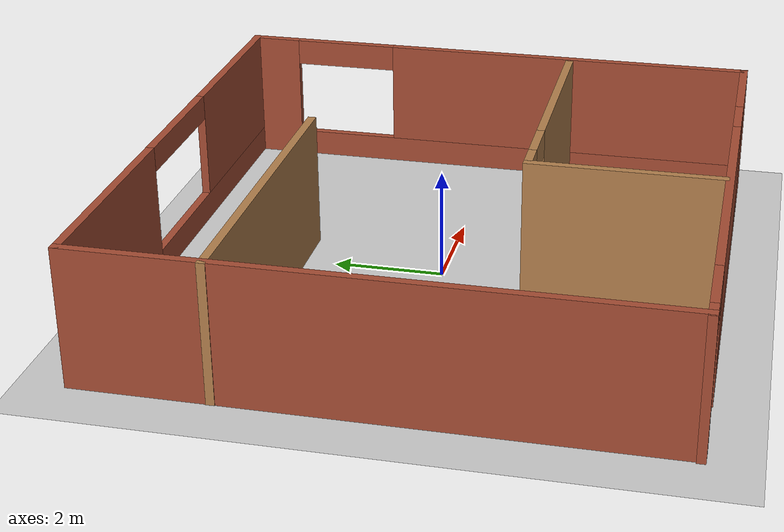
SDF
<sdf version="1.7">
 <world name="default">
  <light name="sun" type="directional">
   <pose>0 0 10 0 -0 0</pose>
   <diffuse>0.8 0.8 0.8 1</diffuse>
   <specular>0.2 0.2 0.2 1</specular>
   <attenuation>
    <range>1000</range>
    <constant>0.9</constant>
    <linear>0.01</linear>
    <quadratic>0.001</quadratic>
   </attenuation>
   <direction>-0.5 0.1 -0.9</direction>
   <spot><inner_angle>0</inner_angle><outer_angle>0</outer_angle><falloff>0</falloff></spot>
  </light>
  <model name="ground_plane">
   <static>1</static>
   <link name="link">
    <collision name="collision">
     <geometry><plane><normal>0 0 1</normal><size>100 100</size></plane></geometry>
     <surface><friction><ode><mu>100</mu><mu2>50</mu2></ode></friction></surface>
    </collision>
    <visual name="visual">
     <cast_shadows>0</cast_shadows>
     <geometry><plane><normal>0 0 1</normal><size>100 100</size></plane></geometry>
     <material>
      <script><uri>file://media/materials/scripts/gazebo.material</uri><name>Gazebo/Grey</name></script>
     </material>
    </visual>
   </link>
  </model>
  <gravity>0 0 -9.8</gravity>
  <magnetic_field>6e-06 2.3e-05 -4.2e-05</magnetic_field>
  <atmosphere type="adiabatic"/>
  <physics type="ode">
   <max_step_size>0.001</max_step_size>
   <real_time_factor>1</real_time_factor>
   <real_time_update_rate>1000</real_time_update_rate>
  </physics>
  <scene><ambient>0.4 0.4 0.4 1</ambient><background>0.7 0.7 0.7 1</background><shadows>1</shadows></scene>
  <audio><device>default</device></audio>
  <spherical_coordinates>
   <surface_model>EARTH_WGS84</surface_model>
   <latitude_deg>0</latitude_deg>
   <longitude_deg>0</longitude_deg>
   <elevation>0</elevation>
   <heading_deg>0</heading_deg>
  </spherical_coordinates>
  <model name="test_world">
   <pose>-0.015208 -0 0 0 -0 0</pose>
   <link name="Wall_0">
    <collision name="Wall_0_Collision">
     <geometry><box><size>10.15 0.15 2.5</size></box></geometry>
     <pose>0 0 1.25 0 -0 0</pose>
    </collision>
    <visual name="Wall_0_Visual">
     <pose>0 0 1.25 0 -0 0</pose>
     <geometry><box><size>10.15 0.15 2.5</size></box></geometry>
     <material>
      <script><uri>file://media/materials/scripts/gazebo.material</uri><name>Gazebo/Bricks</name></script>
      <ambient>1 1 1 1</ambient>
     </material>
     <meta><layer>0</layer></meta>
    </visual>
    <pose>-4.98479 0 0 0 -0 1.5708</pose>
   </link>
   <link name="Wall_1">
    <pose>0.015208 5 0 0 -0 0</pose>
    <visual name="Wall_1_Visual_0">
     <pose>-3.06741 0 1.25 0 -0 0</pose>
     <geometry><box><size>4.01517 0.15 2.5</size></box></geometry>
     <material>
      <script><uri>file://media/materials/scripts/gazebo.material</uri><name>Gazebo/Bricks</name></script>
      <ambient>1 1 1 1</ambient>
     </material>
     <meta><layer>0</layer></meta>
    </visual>
    <collision name="Wall_1_Collision_0">
     <geometry><box><size>4.01517 0.15 2.5</size></box></geometry>
     <pose>-3.06741 0 1.25 0 -0 0</pose>
    </collision>
    <visual name="Wall_1_Visual_1">
     <pose>2.00759 0 0.25 0 -0 0</pose>
     <geometry><box><size>6.13483 0.15 0.5</size></box></geometry>
     <material>
      <script><uri>file://media/materials/scripts/gazebo.material</uri><name>Gazebo/Bricks</name></script>
      <ambient>1 1 1 1</ambient>
     </material>
     <meta><layer>0</layer></meta>
    </visual>
    <collision name="Wall_1_Collision_1">
     <geometry><box><size>6.13483 0.15 0.5</size></box></geometry>
     <pose>2.00759 0 0.25 0 -0 0</pose>
    </collision>
    <visual name="Wall_1_Visual_2">
     <pose>3.27759 0 1.5 0 -0 0</pose>
     <geometry><box><size>3.59483 0.15 2</size></box></geometry>
     <material>
      <script><uri>file://media/materials/scripts/gazebo.material</uri><name>Gazebo/Bricks</name></script>
      <ambient>1 1 1 1</ambient>
     </material>
     <meta><layer>0</layer></meta>
    </visual>
    <collision name="Wall_1_Collision_2">
     <geometry><box><size>3.59483 0.15 2</size></box></geometry>
     <pose>3.27759 0 1.5 0 -0 0</pose>
    </collision>
    <visual name="Wall_1_Visual_3">
     <pose>0.210174 0 2.27 0 -0 0</pose>
     <geometry><box><size>2.54 0.15 0.46</size></box></geometry>
     <material>
      <script><uri>file://media/materials/scripts/gazebo.material</uri><name>Gazebo/Bricks</name></script>
      <ambient>1 1 1 1</ambient>
     </material>
     <meta><layer>0</layer></meta>
    </visual>
    <collision name="Wall_1_Collision_3">
     <geometry><box><size>2.54 0.15 0.46</size></box></geometry>
     <pose>0.210174 0 2.27 0 -0 0</pose>
    </collision>
   </link>
   <link name="Wall_2">
    <pose>5.01521 0 0 0 -0 -1.5708</pose>
    <visual name="Wall_2_Visual_0">
     <pose>-4.58164 0 1.25 0 -0 0</pose>
     <geometry><box><size>0.986721 0.15 2.5</size></box></geometry>
     <material>
      <script><uri>file://media/materials/scripts/gazebo.material</uri><name>Gazebo/Bricks</name></script>
      <ambient>1 1 1 1</ambient>
     </material>
     <meta><layer>0</layer></meta>
    </visual>
    <collision name="Wall_2_Collision_0">
     <geometry><box><size>0.986721 0.15 2.5</size></box></geometry>
     <pose>-4.58164 0 1.25 0 -0 0</pose>
    </collision>
    <visual name="Wall_2_Visual_1">
     <pose>0.493361 0 0.25 0 -0 0</pose>
     <geometry><box><size>9.16328 0.15 0.5</size></box></geometry>
     <material>
      <script><uri>file://media/materials/scripts/gazebo.material</uri><name>Gazebo/Bricks</name></script>
      <ambient>1 1 1 1</ambient>
     </material>
     <meta><layer>0</layer></meta>
    </visual>
    <collision name="Wall_2_Collision_1">
     <geometry><box><size>9.16328 0.15 0.5</size></box></geometry>
     <pose>0.493361 0 0.25 0 -0 0</pose>
    </collision>
    <visual name="Wall_2_Visual_2">
     <pose>1.49336 0 1.5 0 -0 0</pose>
     <geometry><box><size>7.16328 0.15 2</size></box></geometry>
     <material>
      <script><uri>file://media/materials/scripts/gazebo.material</uri><name>Gazebo/Bricks</name></script>
      <ambient>1 1 1 1</ambient>
     </material>
     <meta><layer>0</layer></meta>
    </visual>
    <collision name="Wall_2_Collision_2">
     <geometry><box><size>7.16328 0.15 2</size></box></geometry>
     <pose>1.49336 0 1.5 0 -0 0</pose>
    </collision>
    <visual name="Wall_2_Visual_3">
     <pose>-3.08828 0 2.25 0 -0 0</pose>
     <geometry><box><size>2 0.15 0.5</size></box></geometry>
     <material>
      <script><uri>file://media/materials/scripts/gazebo.material</uri><name>Gazebo/Bricks</name></script>
      <ambient>1 1 1 1</ambient>
     </material>
     <meta><layer>0</layer></meta>
    </visual>
    <collision name="Wall_2_Collision_3">
     <geometry><box><size>2 0.15 0.5</size></box></geometry>
     <pose>-3.08828 0 2.25 0 -0 0</pose>
    </collision>
   </link>
   <link name="Wall_3">
    <pose>-0.015209 -5 0 0 -0 3.14159</pose>
    <visual name="Wall_3_Visual_0">
     <pose>-4.08866 0 1.25 0 -0 0</pose>
     <geometry><box><size>1.97267 0.15 2.5</size></box></geometry>
     <material>
      <script><uri>file://media/materials/scripts/gazebo.material</uri><name>Gazebo/Bricks</name></script>
      <ambient>1 1 1 1</ambient>
     </material>
     <meta><layer>0</layer></meta>
    </visual>
    <collision name="Wall_3_Collision_0">
     <geometry><box><size>1.97267 0.15 2.5</size></box></geometry>
     <pose>-4.08866 0 1.25 0 -0 0</pose>
    </collision>
    <visual name="Wall_3_Visual_1">
     <pose>4.87832 0 1.25 0 -0 0</pose>
     <geometry><box><size>0.393365 0.15 2.5</size></box></geometry>
     <material>
      <script><uri>file://media/materials/scripts/gazebo.material</uri><name>Gazebo/Bricks</name></script>
      <ambient>1 1 1 1</ambient>
     </material>
     <meta><layer>0</layer></meta>
    </visual>
    <collision name="Wall_3_Collision_1">
     <geometry><box><size>0.393365 0.15 2.5</size></box></geometry>
     <pose>4.87832 0 1.25 0 -0 0</pose>
    </collision>
    <visual name="Wall_3_Visual_2">
     <pose>0.189653 0 0.3 0 -0 0</pose>
     <geometry><box><size>6.58397 0.15 0.6</size></box></geometry>
     <material>
      <script><uri>file://media/materials/scripts/gazebo.material</uri><name>Gazebo/Bricks</name></script>
      <ambient>1 1 1 1</ambient>
     </material>
     <meta><layer>0</layer></meta>
    </visual>
    <collision name="Wall_3_Collision_2">
     <geometry><box><size>6.58397 0.15 0.6</size></box></geometry>
     <pose>0.189653 0 0.3 0 -0 0</pose>
    </collision>
    <visual name="Wall_3_Visual_3">
     <pose>0.689653 0 1.55 0 -0 0</pose>
     <geometry><box><size>5.58397 0.15 1.9</size></box></geometry>
     <material>
      <script><uri>file://media/materials/scripts/gazebo.material</uri><name>Gazebo/Bricks</name></script>
      <ambient>1 1 1 1</ambient>
     </material>
     <meta><layer>0</layer></meta>
    </visual>
    <collision name="Wall_3_Collision_3">
     <geometry><box><size>5.58397 0.15 1.9</size></box></geometry>
     <pose>0.689653 0 1.55 0 -0 0</pose>
    </collision>
    <visual name="Wall_3_Visual_4">
     <pose>4.08164 0 2.25 0 -0 0</pose>
     <geometry><box><size>1.2 0.15 0.5</size></box></geometry>
     <material>
      <script><uri>file://media/materials/scripts/gazebo.material</uri><name>Gazebo/Bricks</name></script>
      <ambient>1 1 1 1</ambient>
     </material>
     <meta><layer>0</layer></meta>
    </visual>
    <collision name="Wall_3_Collision_4">
     <geometry><box><size>1.2 0.15 0.5</size></box></geometry>
     <pose>4.08164 0 2.25 0 -0 0</pose>
    </collision>
    <visual name="Wall_3_Visual_5">
     <pose>-2.60233 0 2.3 0 -0 0</pose>
     <geometry><box><size>1 0.15 0.4</size></box></geometry>
     <material>
      <script><uri>file://media/materials/scripts/gazebo.material</uri><name>Gazebo/Bricks</name></script>
      <ambient>1 1 1 1</ambient>
     </material>
     <meta><layer>0</layer></meta>
    </visual>
    <collision name="Wall_3_Collision_5">
     <geometry><box><size>1 0.15 0.4</size></box></geometry>
     <pose>-2.60233 0 2.3 0 -0 0</pose>
    </collision>
   </link>
   <link name="Wall_5">
    <collision name="Wall_5_Collision">
     <geometry><box><size>3.5 0.15 2.5</size></box></geometry>
     <pose>0 0 1.25 0 -0 0</pose>
    </collision>
    <visual name="Wall_5_Visual">
     <pose>0 0 1.25 0 -0 0</pose>
     <geometry><box><size>3.5 0.15 2.5</size></box></geometry>
     <material>
      <script><uri>file://media/materials/scripts/gazebo.material</uri><name>Gazebo/Wood</name></script>
      <ambient>1 1 1 1</ambient>
     </material>
     <meta><layer>0</layer></meta>
    </visual>
    <pose>-0.27787 -3.2388 0 0 -0 1.5708</pose>
   </link>
   <link name="Wall_6">
    <pose>2.27213 -1.5638 0 0 -0 0</pose>
    <visual name="Wall_6_Visual_0">
     <pose>-2.31462 0 1.25 0 -0 0</pose>
     <geometry><box><size>0.620754 0.15 2.5</size></box></geometry>
     <material>
      <script><uri>file://media/materials/scripts/gazebo.material</uri><name>Gazebo/Wood</name></script>
      <ambient>1 1 1 1</ambient>
     </material>
     <meta><layer>0</layer></meta>
    </visual>
    <collision name="Wall_6_Collision_0">
     <geometry><box><size>0.620754 0.15 2.5</size></box></geometry>
     <pose>-2.31462 0 1.25 0 -0 0</pose>
    </collision>
    <visual name="Wall_6_Visual_1">
     <pose>0.760377 0 1.25 0 -0 0</pose>
     <geometry><box><size>3.72925 0.15 2.5</size></box></geometry>
     <material>
      <script><uri>file://media/materials/scripts/gazebo.material</uri><name>Gazebo/Wood</name></script>
      <ambient>1 1 1 1</ambient>
     </material>
     <meta><layer>0</layer></meta>
    </visual>
    <collision name="Wall_6_Collision_1">
     <geometry><box><size>3.72925 0.15 2.5</size></box></geometry>
     <pose>0.760377 0 1.25 0 -0 0</pose>
    </collision>
    <visual name="Wall_6_Visual_2">
     <pose>-1.55425 0 2.25 0 -0 0</pose>
     <geometry><box><size>0.9 0.15 0.5</size></box></geometry>
     <material>
      <script><uri>file://media/materials/scripts/gazebo.material</uri><name>Gazebo/Wood</name></script>
      <ambient>1 1 1 1</ambient>
     </material>
     <meta><layer>0</layer></meta>
    </visual>
    <collision name="Wall_6_Collision_2">
     <geometry><box><size>0.9 0.15 0.5</size></box></geometry>
     <pose>-1.55425 0 2.25 0 -0 0</pose>
    </collision>
   </link>
   <link name="Wall_8">
    <collision name="Wall_8_Collision">
     <geometry><box><size>6 0.15 2.5</size></box></geometry>
     <pose>0 0 1.25 0 -0 0</pose>
    </collision>
    <visual name="Wall_8_Visual">
     <pose>0 0 1.25 0 -0 0</pose>
     <geometry><box><size>6 0.15 2.5</size></box></geometry>
     <material>
      <script><uri>file://media/materials/scripts/gazebo.material</uri><name>Gazebo/Wood</name></script>
      <ambient>1 1 1 1</ambient>
     </material>
     <meta><layer>0</layer></meta>
    </visual>
    <pose>-2.07151 2.62677 0 0 -0 0</pose>
   </link>
   <static>1</static>
  </model>
 </world>
</sdf>
